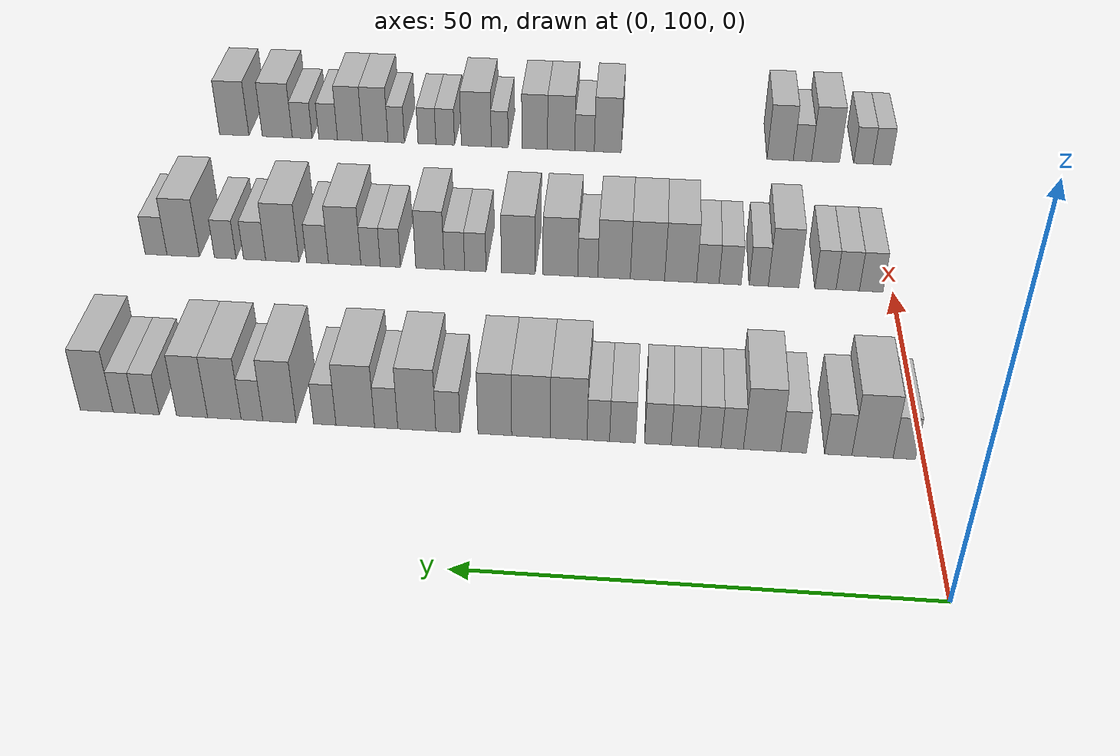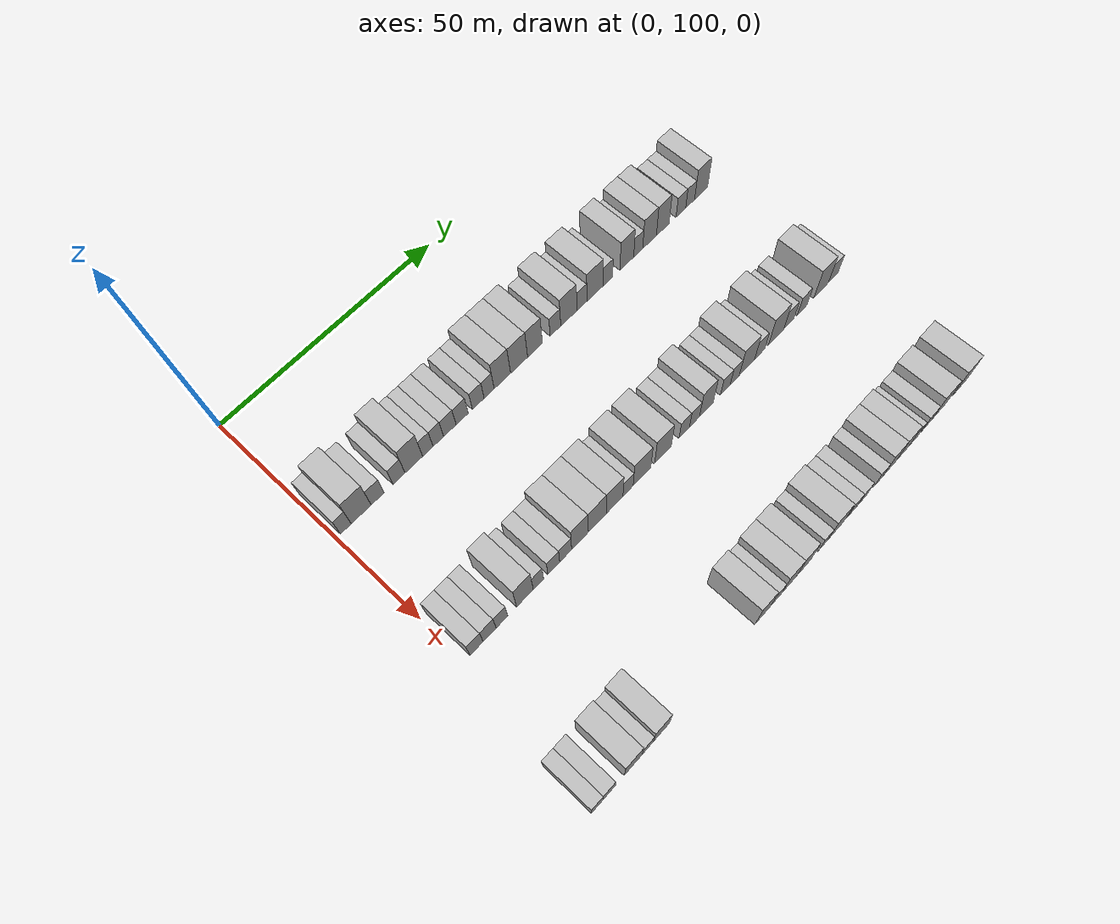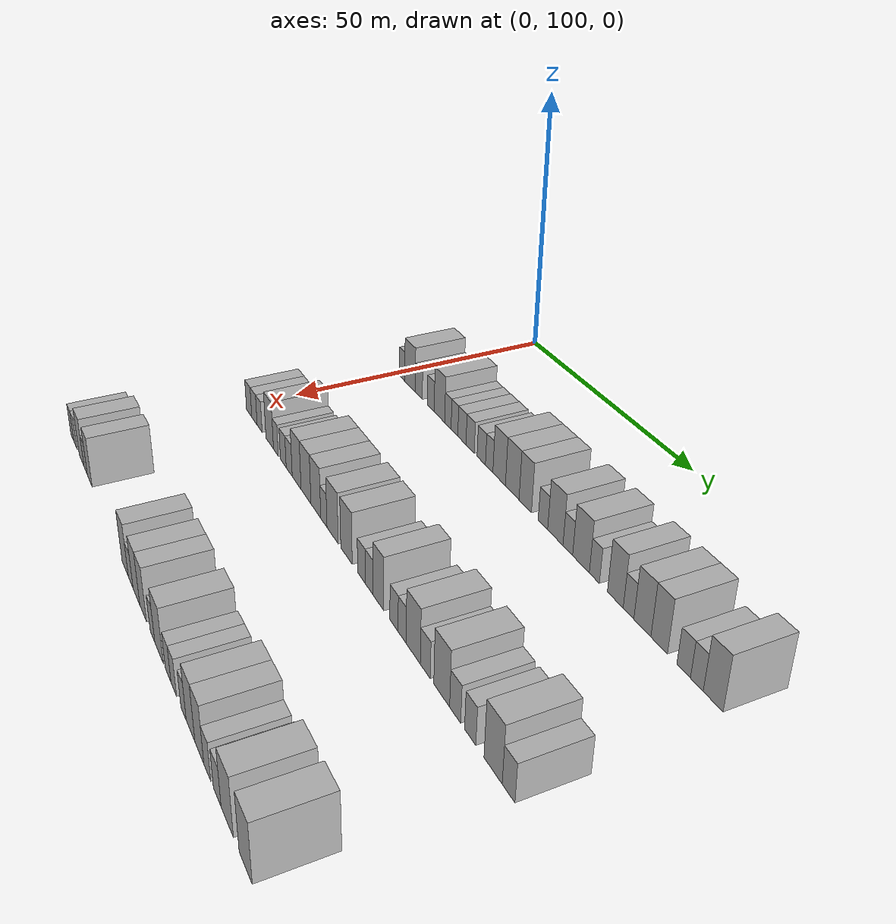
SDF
<sdf version="1.6">
 <world name="default">
  <model name="building_90">
   <static>1</static>
   <pose>25.0000 102.1770 0 0.000000 0.000000 0.000000</pose>
   <link name="link">
    <pose>0 0 3.00 0 0 0</pose>
    <collision name="collision"><geometry><box><size>10.0000 2.4174 6.0000</size></box></geometry></collision>
    <visual name="visual">
     <cast_shadows>0</cast_shadows>
     <geometry><box><size>10.0000 2.4174 6.0000</size></box></geometry>
     <material>
      <script>
       <uri>model://HANNAS_wall/materials/scripts</uri>
       <uri>model://HANNAS_wall/materials/textures</uri>
       <name>vrc/HANNAS_wall</name>
      </script>
     </material>
    </visual>
   </link>
  </model>
  <model name="building_91">
   <static>1</static>
   <pose>25.0000 105.6229 0 0.000000 0.000000 0.000000</pose>
   <link name="link">
    <pose>0 0 4.50 0 0 0</pose>
    <collision name="collision"><geometry><box><size>10.0000 4.4744 9.0000</size></box></geometry></collision>
    <visual name="visual">
     <cast_shadows>0</cast_shadows>
     <geometry><box><size>10.0000 4.4744 9.0000</size></box></geometry>
     <material>
      <script>
       <uri>model://HANNAS_wall/materials/scripts</uri>
       <uri>model://HANNAS_wall/materials/textures</uri>
       <name>vrc/HANNAS_wall</name>
      </script>
     </material>
    </visual>
   </link>
  </model>
  <model name="building_92">
   <static>1</static>
   <pose>25.0000 109.3380 0 0.000000 0.000000 0.000000</pose>
   <link name="link">
    <pose>0 0 3.00 0 0 0</pose>
    <collision name="collision"><geometry><box><size>10.0000 2.9559 6.0000</size></box></geometry></collision>
    <visual name="visual">
     <cast_shadows>0</cast_shadows>
     <geometry><box><size>10.0000 2.9559 6.0000</size></box></geometry>
     <material>
      <script>
       <uri>model://HANNAS_wall/materials/scripts</uri>
       <uri>model://HANNAS_wall/materials/textures</uri>
       <name>vrc/HANNAS_wall</name>
      </script>
     </material>
    </visual>
   </link>
  </model>
  <model name="building_93">
   <static>1</static>
   <pose>25.0000 114.2175 0 0.000000 0.000000 0.000000</pose>
   <link name="link">
    <pose>0 0 3.00 0 0 0</pose>
    <collision name="collision"><geometry><box><size>10.0000 2.8030 6.0000</size></box></geometry></collision>
    <visual name="visual">
     <cast_shadows>0</cast_shadows>
     <geometry><box><size>10.0000 2.8030 6.0000</size></box></geometry>
     <material>
      <script>
       <uri>model://HANNAS_wall/materials/scripts</uri>
       <uri>model://HANNAS_wall/materials/textures</uri>
       <name>vrc/HANNAS_wall</name>
      </script>
     </material>
    </visual>
   </link>
  </model>
  <model name="building_94">
   <static>1</static>
   <pose>25.0000 117.6730 0 0.000000 0.000000 0.000000</pose>
   <link name="link">
    <pose>0 0 4.50 0 0 0</pose>
    <collision name="collision"><geometry><box><size>10.0000 4.1080 9.0000</size></box></geometry></collision>
    <visual name="visual">
     <cast_shadows>0</cast_shadows>
     <geometry><box><size>10.0000 4.1080 9.0000</size></box></geometry>
     <material>
      <script>
       <uri>model://HANNAS_wall/materials/scripts</uri>
       <uri>model://HANNAS_wall/materials/textures</uri>
       <name>vrc/HANNAS_wall</name>
      </script>
     </material>
    </visual>
   </link>
  </model>
  <model name="building_95">
   <static>1</static>
   <pose>25.0000 120.9641 0 0.000000 0.000000 0.000000</pose>
   <link name="link">
    <pose>0 0 3.00 0 0 0</pose>
    <collision name="collision"><geometry><box><size>10.0000 2.4741 6.0000</size></box></geometry></collision>
    <visual name="visual">
     <cast_shadows>0</cast_shadows>
     <geometry><box><size>10.0000 2.4741 6.0000</size></box></geometry>
     <material>
      <script>
       <uri>model://HANNAS_wall/materials/scripts</uri>
       <uri>model://HANNAS_wall/materials/textures</uri>
       <name>vrc/HANNAS_wall</name>
      </script>
     </material>
    </visual>
   </link>
  </model>
  <model name="building_96">
   <static>1</static>
   <pose>25.0000 123.4543 0 0.000000 0.000000 0.000000</pose>
   <link name="link">
    <pose>0 0 3.00 0 0 0</pose>
    <collision name="collision"><geometry><box><size>10.0000 2.5065 6.0000</size></box></geometry></collision>
    <visual name="visual">
     <cast_shadows>0</cast_shadows>
     <geometry><box><size>10.0000 2.5065 6.0000</size></box></geometry>
     <material>
      <script>
       <uri>model://HANNAS_wall/materials/scripts</uri>
       <uri>model://HANNAS_wall/materials/textures</uri>
       <name>vrc/HANNAS_wall</name>
      </script>
     </material>
    </visual>
   </link>
  </model>
  <model name="building_97">
   <static>1</static>
   <pose>25.0000 126.2074 0 0.000000 0.000000 0.000000</pose>
   <link name="link">
    <pose>0 0 3.00 0 0 0</pose>
    <collision name="collision"><geometry><box><size>10.0000 2.9996 6.0000</size></box></geometry></collision>
    <visual name="visual">
     <cast_shadows>0</cast_shadows>
     <geometry><box><size>10.0000 2.9996 6.0000</size></box></geometry>
     <material>
      <script>
       <uri>model://HANNAS_wall/materials/scripts</uri>
       <uri>model://HANNAS_wall/materials/textures</uri>
       <name>vrc/HANNAS_wall</name>
      </script>
     </material>
    </visual>
   </link>
  </model>
  <model name="building_98">
   <static>1</static>
   <pose>25.0000 129.1795 0 0.000000 0.000000 0.000000</pose>
   <link name="link">
    <pose>0 0 3.00 0 0 0</pose>
    <collision name="collision"><geometry><box><size>10.0000 2.9447 6.0000</size></box></geometry></collision>
    <visual name="visual">
     <cast_shadows>0</cast_shadows>
     <geometry><box><size>10.0000 2.9447 6.0000</size></box></geometry>
     <material>
      <script>
       <uri>model://HANNAS_wall/materials/scripts</uri>
       <uri>model://HANNAS_wall/materials/textures</uri>
       <name>vrc/HANNAS_wall</name>
      </script>
     </material>
    </visual>
   </link>
  </model>
  <model name="building_99">
   <static>1</static>
   <pose>25.0000 133.0949 0 0.000000 0.000000 0.000000</pose>
   <link name="link">
    <pose>0 0 3.00 0 0 0</pose>
    <collision name="collision"><geometry><box><size>10.0000 2.8861 6.0000</size></box></geometry></collision>
    <visual name="visual">
     <cast_shadows>0</cast_shadows>
     <geometry><box><size>10.0000 2.8861 6.0000</size></box></geometry>
     <material>
      <script>
       <uri>model://HANNAS_wall/materials/scripts</uri>
       <uri>model://HANNAS_wall/materials/textures</uri>
       <name>vrc/HANNAS_wall</name>
      </script>
     </material>
    </visual>
   </link>
  </model>
  <model name="building_100">
   <static>1</static>
   <pose>25.0000 135.7942 0 0.000000 0.000000 0.000000</pose>
   <link name="link">
    <pose>0 0 3.00 0 0 0</pose>
    <collision name="collision"><geometry><box><size>10.0000 2.5126 6.0000</size></box></geometry></collision>
    <visual name="visual">
     <cast_shadows>0</cast_shadows>
     <geometry><box><size>10.0000 2.5126 6.0000</size></box></geometry>
     <material>
      <script>
       <uri>model://HANNAS_wall/materials/scripts</uri>
       <uri>model://HANNAS_wall/materials/textures</uri>
       <name>vrc/HANNAS_wall</name>
      </script>
     </material>
    </visual>
   </link>
  </model>
  <model name="building_101">
   <static>1</static>
   <pose>25.0000 139.1042 0 0.000000 0.000000 0.000000</pose>
   <link name="link">
    <pose>0 0 4.50 0 0 0</pose>
    <collision name="collision"><geometry><box><size>10.0000 4.1073 9.0000</size></box></geometry></collision>
    <visual name="visual">
     <cast_shadows>0</cast_shadows>
     <geometry><box><size>10.0000 4.1073 9.0000</size></box></geometry>
     <material>
      <script>
       <uri>model://HANNAS_wall/materials/scripts</uri>
       <uri>model://HANNAS_wall/materials/textures</uri>
       <name>vrc/HANNAS_wall</name>
      </script>
     </material>
    </visual>
   </link>
  </model>
  <model name="building_102">
   <static>1</static>
   <pose>25.0000 143.3196 0 0.000000 0.000000 0.000000</pose>
   <link name="link">
    <pose>0 0 4.50 0 0 0</pose>
    <collision name="collision"><geometry><box><size>10.0000 4.3234 9.0000</size></box></geometry></collision>
    <visual name="visual">
     <cast_shadows>0</cast_shadows>
     <geometry><box><size>10.0000 4.3234 9.0000</size></box></geometry>
     <material>
      <script>
       <uri>model://HANNAS_wall/materials/scripts</uri>
       <uri>model://HANNAS_wall/materials/textures</uri>
       <name>vrc/HANNAS_wall</name>
      </script>
     </material>
    </visual>
   </link>
  </model>
  <model name="building_103">
   <static>1</static>
   <pose>25.0000 147.3773 0 0.000000 0.000000 0.000000</pose>
   <link name="link">
    <pose>0 0 4.50 0 0 0</pose>
    <collision name="collision"><geometry><box><size>10.0000 3.7920 9.0000</size></box></geometry></collision>
    <visual name="visual">
     <cast_shadows>0</cast_shadows>
     <geometry><box><size>10.0000 3.7920 9.0000</size></box></geometry>
     <material>
      <script>
       <uri>model://HANNAS_wall/materials/scripts</uri>
       <uri>model://HANNAS_wall/materials/textures</uri>
       <name>vrc/HANNAS_wall</name>
      </script>
     </material>
    </visual>
   </link>
  </model>
  <model name="building_104">
   <static>1</static>
   <pose>25.0000 152.6532 0 0.000000 0.000000 0.000000</pose>
   <link name="link">
    <pose>0 0 3.00 0 0 0</pose>
    <collision name="collision"><geometry><box><size>10.0000 2.7597 6.0000</size></box></geometry></collision>
    <visual name="visual">
     <cast_shadows>0</cast_shadows>
     <geometry><box><size>10.0000 2.7597 6.0000</size></box></geometry>
     <material>
      <script>
       <uri>model://HANNAS_wall/materials/scripts</uri>
       <uri>model://HANNAS_wall/materials/textures</uri>
       <name>vrc/HANNAS_wall</name>
      </script>
     </material>
    </visual>
   </link>
  </model>
  <model name="building_105">
   <static>1</static>
   <pose>25.0000 156.1890 0 0.000000 0.000000 0.000000</pose>
   <link name="link">
    <pose>0 0 4.50 0 0 0</pose>
    <collision name="collision"><geometry><box><size>10.0000 4.3119 9.0000</size></box></geometry></collision>
    <visual name="visual">
     <cast_shadows>0</cast_shadows>
     <geometry><box><size>10.0000 4.3119 9.0000</size></box></geometry>
     <material>
      <script>
       <uri>model://HANNAS_wall/materials/scripts</uri>
       <uri>model://HANNAS_wall/materials/textures</uri>
       <name>vrc/HANNAS_wall</name>
      </script>
     </material>
    </visual>
   </link>
  </model>
  <model name="building_106">
   <static>1</static>
   <pose>25.0000 159.6617 0 0.000000 0.000000 0.000000</pose>
   <link name="link">
    <pose>0 0 3.00 0 0 0</pose>
    <collision name="collision"><geometry><box><size>10.0000 2.6334 6.0000</size></box></geometry></collision>
    <visual name="visual">
     <cast_shadows>0</cast_shadows>
     <geometry><box><size>10.0000 2.6334 6.0000</size></box></geometry>
     <material>
      <script>
       <uri>model://HANNAS_wall/materials/scripts</uri>
       <uri>model://HANNAS_wall/materials/textures</uri>
       <name>vrc/HANNAS_wall</name>
      </script>
     </material>
    </visual>
   </link>
  </model>
  <model name="building_107">
   <static>1</static>
   <pose>25.0000 163.1807 0 0.000000 0.000000 0.000000</pose>
   <link name="link">
    <pose>0 0 4.50 0 0 0</pose>
    <collision name="collision"><geometry><box><size>10.0000 4.4045 9.0000</size></box></geometry></collision>
    <visual name="visual">
     <cast_shadows>0</cast_shadows>
     <geometry><box><size>10.0000 4.4045 9.0000</size></box></geometry>
     <material>
      <script>
       <uri>model://HANNAS_wall/materials/scripts</uri>
       <uri>model://HANNAS_wall/materials/textures</uri>
       <name>vrc/HANNAS_wall</name>
      </script>
     </material>
    </visual>
   </link>
  </model>
  <model name="building_108">
   <static>1</static>
   <pose>25.0000 166.6665 0 0.000000 0.000000 0.000000</pose>
   <link name="link">
    <pose>0 0 3.00 0 0 0</pose>
    <collision name="collision"><geometry><box><size>10.0000 2.5673 6.0000</size></box></geometry></collision>
    <visual name="visual">
     <cast_shadows>0</cast_shadows>
     <geometry><box><size>10.0000 2.5673 6.0000</size></box></geometry>
     <material>
      <script>
       <uri>model://HANNAS_wall/materials/scripts</uri>
       <uri>model://HANNAS_wall/materials/textures</uri>
       <name>vrc/HANNAS_wall</name>
      </script>
     </material>
    </visual>
   </link>
  </model>
  <model name="building_109">
   <static>1</static>
   <pose>25.0000 171.8564 0 0.000000 0.000000 0.000000</pose>
   <link name="link">
    <pose>0 0 4.50 0 0 0</pose>
    <collision name="collision"><geometry><box><size>10.0000 3.8125 9.0000</size></box></geometry></collision>
    <visual name="visual">
     <cast_shadows>0</cast_shadows>
     <geometry><box><size>10.0000 3.8125 9.0000</size></box></geometry>
     <material>
      <script>
       <uri>model://HANNAS_wall/materials/scripts</uri>
       <uri>model://HANNAS_wall/materials/textures</uri>
       <name>vrc/HANNAS_wall</name>
      </script>
     </material>
    </visual>
   </link>
  </model>
  <model name="building_110">
   <static>1</static>
   <pose>25.0000 175.0167 0 0.000000 0.000000 0.000000</pose>
   <link name="link">
    <pose>0 0 3.00 0 0 0</pose>
    <collision name="collision"><geometry><box><size>10.0000 2.5080 6.0000</size></box></geometry></collision>
    <visual name="visual">
     <cast_shadows>0</cast_shadows>
     <geometry><box><size>10.0000 2.5080 6.0000</size></box></geometry>
     <material>
      <script>
       <uri>model://HANNAS_wall/materials/scripts</uri>
       <uri>model://HANNAS_wall/materials/textures</uri>
       <name>vrc/HANNAS_wall</name>
      </script>
     </material>
    </visual>
   </link>
  </model>
  <model name="building_111">
   <static>1</static>
   <pose>25.0000 178.2026 0 0.000000 0.000000 0.000000</pose>
   <link name="link">
    <pose>0 0 4.50 0 0 0</pose>
    <collision name="collision"><geometry><box><size>10.0000 3.8639 9.0000</size></box></geometry></collision>
    <visual name="visual">
     <cast_shadows>0</cast_shadows>
     <geometry><box><size>10.0000 3.8639 9.0000</size></box></geometry>
     <material>
      <script>
       <uri>model://HANNAS_wall/materials/scripts</uri>
       <uri>model://HANNAS_wall/materials/textures</uri>
       <name>vrc/HANNAS_wall</name>
      </script>
     </material>
    </visual>
   </link>
  </model>
  <model name="building_112">
   <static>1</static>
   <pose>25.0000 181.9411 0 0.000000 0.000000 0.000000</pose>
   <link name="link">
    <pose>0 0 4.50 0 0 0</pose>
    <collision name="collision"><geometry><box><size>10.0000 3.6131 9.0000</size></box></geometry></collision>
    <visual name="visual">
     <cast_shadows>0</cast_shadows>
     <geometry><box><size>10.0000 3.6131 9.0000</size></box></geometry>
     <material>
      <script>
       <uri>model://HANNAS_wall/materials/scripts</uri>
       <uri>model://HANNAS_wall/materials/textures</uri>
       <name>vrc/HANNAS_wall</name>
      </script>
     </material>
    </visual>
   </link>
  </model>
  <model name="building_113">
   <static>1</static>
   <pose>25.0000 187.1473 0 0.000000 0.000000 0.000000</pose>
   <link name="link">
    <pose>0 0 3.00 0 0 0</pose>
    <collision name="collision"><geometry><box><size>10.0000 2.7991 6.0000</size></box></geometry></collision>
    <visual name="visual">
     <cast_shadows>0</cast_shadows>
     <geometry><box><size>10.0000 2.7991 6.0000</size></box></geometry>
     <material>
      <script>
       <uri>model://HANNAS_wall/materials/scripts</uri>
       <uri>model://HANNAS_wall/materials/textures</uri>
       <name>vrc/HANNAS_wall</name>
      </script>
     </material>
    </visual>
   </link>
  </model>
  <model name="building_114">
   <static>1</static>
   <pose>25.0000 189.8278 0 0.000000 0.000000 0.000000</pose>
   <link name="link">
    <pose>0 0 3.00 0 0 0</pose>
    <collision name="collision"><geometry><box><size>10.0000 2.5619 6.0000</size></box></geometry></collision>
    <visual name="visual">
     <cast_shadows>0</cast_shadows>
     <geometry><box><size>10.0000 2.5619 6.0000</size></box></geometry>
     <material>
      <script>
       <uri>model://HANNAS_wall/materials/scripts</uri>
       <uri>model://HANNAS_wall/materials/textures</uri>
       <name>vrc/HANNAS_wall</name>
      </script>
     </material>
    </visual>
   </link>
  </model>
  <model name="building_115">
   <static>1</static>
   <pose>25.0000 193.0328 0 0.000000 0.000000 0.000000</pose>
   <link name="link">
    <pose>0 0 4.50 0 0 0</pose>
    <collision name="collision"><geometry><box><size>10.0000 3.8481 9.0000</size></box></geometry></collision>
    <visual name="visual">
     <cast_shadows>0</cast_shadows>
     <geometry><box><size>10.0000 3.8481 9.0000</size></box></geometry>
     <material>
      <script>
       <uri>model://HANNAS_wall/materials/scripts</uri>
       <uri>model://HANNAS_wall/materials/textures</uri>
       <name>vrc/HANNAS_wall</name>
      </script>
     </material>
    </visual>
   </link>
  </model>
  <model name="building_235">
   <static>1</static>
   <pose>55.0000 102.7722 0 0.000000 0.000000 0.000000</pose>
   <link name="link">
    <pose>0 0 3.00 0 0 0</pose>
    <collision name="collision"><geometry><box><size>10.0000 2.9476 6.0000</size></box></geometry></collision>
    <visual name="visual">
     <cast_shadows>0</cast_shadows>
     <geometry><box><size>10.0000 2.9476 6.0000</size></box></geometry>
     <material>
      <script>
       <uri>model://HANNAS_wall/materials/scripts</uri>
       <uri>model://HANNAS_wall/materials/textures</uri>
       <name>vrc/HANNAS_wall</name>
      </script>
     </material>
    </visual>
   </link>
  </model>
  <model name="building_236">
   <static>1</static>
   <pose>55.0000 105.7058 0 0.000000 0.000000 0.000000</pose>
   <link name="link">
    <pose>0 0 3.00 0 0 0</pose>
    <collision name="collision"><geometry><box><size>10.0000 2.9196 6.0000</size></box></geometry></collision>
    <visual name="visual">
     <cast_shadows>0</cast_shadows>
     <geometry><box><size>10.0000 2.9196 6.0000</size></box></geometry>
     <material>
      <script>
       <uri>model://HANNAS_wall/materials/scripts</uri>
       <uri>model://HANNAS_wall/materials/textures</uri>
       <name>vrc/HANNAS_wall</name>
      </script>
     </material>
    </visual>
   </link>
  </model>
  <model name="building_237">
   <static>1</static>
   <pose>55.0000 108.4923 0 0.000000 0.000000 0.000000</pose>
   <link name="link">
    <pose>0 0 3.00 0 0 0</pose>
    <collision name="collision"><geometry><box><size>10.0000 2.6533 6.0000</size></box></geometry></collision>
    <visual name="visual">
     <cast_shadows>0</cast_shadows>
     <geometry><box><size>10.0000 2.6533 6.0000</size></box></geometry>
     <material>
      <script>
       <uri>model://HANNAS_wall/materials/scripts</uri>
       <uri>model://HANNAS_wall/materials/textures</uri>
       <name>vrc/HANNAS_wall</name>
      </script>
     </material>
    </visual>
   </link>
  </model>
  <model name="building_238">
   <static>1</static>
   <pose>55.0000 113.7496 0 0.000000 0.000000 0.000000</pose>
   <link name="link">
    <pose>0 0 4.50 0 0 0</pose>
    <collision name="collision"><geometry><box><size>10.0000 3.8613 9.0000</size></box></geometry></collision>
    <visual name="visual">
     <cast_shadows>0</cast_shadows>
     <geometry><box><size>10.0000 3.8613 9.0000</size></box></geometry>
     <material>
      <script>
       <uri>model://HANNAS_wall/materials/scripts</uri>
       <uri>model://HANNAS_wall/materials/textures</uri>
       <name>vrc/HANNAS_wall</name>
      </script>
     </material>
    </visual>
   </link>
  </model>
  <model name="building_239">
   <static>1</static>
   <pose>55.0000 116.8926 0 0.000000 0.000000 0.000000</pose>
   <link name="link">
    <pose>0 0 3.00 0 0 0</pose>
    <collision name="collision"><geometry><box><size>10.0000 2.4247 6.0000</size></box></geometry></collision>
    <visual name="visual">
     <cast_shadows>0</cast_shadows>
     <geometry><box><size>10.0000 2.4247 6.0000</size></box></geometry>
     <material>
      <script>
       <uri>model://HANNAS_wall/materials/scripts</uri>
       <uri>model://HANNAS_wall/materials/textures</uri>
       <name>vrc/HANNAS_wall</name>
      </script>
     </material>
    </visual>
   </link>
  </model>
  <model name="building_240">
   <static>1</static>
   <pose>55.0000 120.5043 0 0.000000 0.000000 0.000000</pose>
   <link name="link">
    <pose>0 0 3.00 0 0 0</pose>
    <collision name="collision"><geometry><box><size>10.0000 2.7988 6.0000</size></box></geometry></collision>
    <visual name="visual">
     <cast_shadows>0</cast_shadows>
     <geometry><box><size>10.0000 2.7988 6.0000</size></box></geometry>
     <material>
      <script>
       <uri>model://HANNAS_wall/materials/scripts</uri>
       <uri>model://HANNAS_wall/materials/textures</uri>
       <name>vrc/HANNAS_wall</name>
      </script>
     </material>
    </visual>
   </link>
  </model>
  <model name="building_241">
   <static>1</static>
   <pose>55.0000 123.3331 0 0.000000 0.000000 0.000000</pose>
   <link name="link">
    <pose>0 0 3.00 0 0 0</pose>
    <collision name="collision"><geometry><box><size>10.0000 2.8587 6.0000</size></box></geometry></collision>
    <visual name="visual">
     <cast_shadows>0</cast_shadows>
     <geometry><box><size>10.0000 2.8587 6.0000</size></box></geometry>
     <material>
      <script>
       <uri>model://HANNAS_wall/materials/scripts</uri>
       <uri>model://HANNAS_wall/materials/textures</uri>
       <name>vrc/HANNAS_wall</name>
      </script>
     </material>
    </visual>
   </link>
  </model>
  <model name="building_242">
   <static>1</static>
   <pose>55.0000 126.7870 0 0.000000 0.000000 0.000000</pose>
   <link name="link">
    <pose>0 0 4.50 0 0 0</pose>
    <collision name="collision"><geometry><box><size>10.0000 4.0492 9.0000</size></box></geometry></collision>
    <visual name="visual">
     <cast_shadows>0</cast_shadows>
     <geometry><box><size>10.0000 4.0492 9.0000</size></box></geometry>
     <material>
      <script>
       <uri>model://HANNAS_wall/materials/scripts</uri>
       <uri>model://HANNAS_wall/materials/textures</uri>
       <name>vrc/HANNAS_wall</name>
      </script>
     </material>
    </visual>
   </link>
  </model>
  <model name="building_243">
   <static>1</static>
   <pose>55.0000 130.9970 0 0.000000 0.000000 0.000000</pose>
   <link name="link">
    <pose>0 0 4.50 0 0 0</pose>
    <collision name="collision"><geometry><box><size>10.0000 4.3709 9.0000</size></box></geometry></collision>
    <visual name="visual">
     <cast_shadows>0</cast_shadows>
     <geometry><box><size>10.0000 4.3709 9.0000</size></box></geometry>
     <material>
      <script>
       <uri>model://HANNAS_wall/materials/scripts</uri>
       <uri>model://HANNAS_wall/materials/textures</uri>
       <name>vrc/HANNAS_wall</name>
      </script>
     </material>
    </visual>
   </link>
  </model>
  <model name="building_244">
   <static>1</static>
   <pose>55.0000 135.2587 0 0.000000 0.000000 0.000000</pose>
   <link name="link">
    <pose>0 0 4.50 0 0 0</pose>
    <collision name="collision"><geometry><box><size>10.0000 4.1524 9.0000</size></box></geometry></collision>
    <visual name="visual">
     <cast_shadows>0</cast_shadows>
     <geometry><box><size>10.0000 4.1524 9.0000</size></box></geometry>
     <material>
      <script>
       <uri>model://HANNAS_wall/materials/scripts</uri>
       <uri>model://HANNAS_wall/materials/textures</uri>
       <name>vrc/HANNAS_wall</name>
      </script>
     </material>
    </visual>
   </link>
  </model>
  <model name="building_245">
   <static>1</static>
   <pose>55.0000 138.6192 0 0.000000 0.000000 0.000000</pose>
   <link name="link">
    <pose>0 0 3.00 0 0 0</pose>
    <collision name="collision"><geometry><box><size>10.0000 2.5686 6.0000</size></box></geometry></collision>
    <visual name="visual">
     <cast_shadows>0</cast_shadows>
     <geometry><box><size>10.0000 2.5686 6.0000</size></box></geometry>
     <material>
      <script>
       <uri>model://HANNAS_wall/materials/scripts</uri>
       <uri>model://HANNAS_wall/materials/textures</uri>
       <name>vrc/HANNAS_wall</name>
      </script>
     </material>
    </visual>
   </link>
  </model>
  <model name="building_246">
   <static>1</static>
   <pose>55.0000 142.1451 0 0.000000 0.000000 0.000000</pose>
   <link name="link">
    <pose>0 0 4.50 0 0 0</pose>
    <collision name="collision"><geometry><box><size>10.0000 4.4832 9.0000</size></box></geometry></collision>
    <visual name="visual">
     <cast_shadows>0</cast_shadows>
     <geometry><box><size>10.0000 4.4832 9.0000</size></box></geometry>
     <material>
      <script>
       <uri>model://HANNAS_wall/materials/scripts</uri>
       <uri>model://HANNAS_wall/materials/textures</uri>
       <name>vrc/HANNAS_wall</name>
      </script>
     </material>
    </visual>
   </link>
  </model>
  <model name="building_247">
   <static>1</static>
   <pose>55.0000 147.5542 0 0.000000 0.000000 0.000000</pose>
   <link name="link">
    <pose>0 0 4.50 0 0 0</pose>
    <collision name="collision"><geometry><box><size>10.0000 4.3351 9.0000</size></box></geometry></collision>
    <visual name="visual">
     <cast_shadows>0</cast_shadows>
     <geometry><box><size>10.0000 4.3351 9.0000</size></box></geometry>
     <material>
      <script>
       <uri>model://HANNAS_wall/materials/scripts</uri>
       <uri>model://HANNAS_wall/materials/textures</uri>
       <name>vrc/HANNAS_wall</name>
      </script>
     </material>
    </visual>
   </link>
  </model>
  <model name="building_248">
   <static>1</static>
   <pose>55.0000 153.1031 0 0.000000 0.000000 0.000000</pose>
   <link name="link">
    <pose>0 0 3.00 0 0 0</pose>
    <collision name="collision"><geometry><box><size>10.0000 2.7626 6.0000</size></box></geometry></collision>
    <visual name="visual">
     <cast_shadows>0</cast_shadows>
     <geometry><box><size>10.0000 2.7626 6.0000</size></box></geometry>
     <material>
      <script>
       <uri>model://HANNAS_wall/materials/scripts</uri>
       <uri>model://HANNAS_wall/materials/textures</uri>
       <name>vrc/HANNAS_wall</name>
      </script>
     </material>
    </visual>
   </link>
  </model>
  <model name="building_249">
   <static>1</static>
   <pose>55.0000 155.8089 0 0.000000 0.000000 0.000000</pose>
   <link name="link">
    <pose>0 0 3.00 0 0 0</pose>
    <collision name="collision"><geometry><box><size>10.0000 2.6492 6.0000</size></box></geometry></collision>
    <visual name="visual">
     <cast_shadows>0</cast_shadows>
     <geometry><box><size>10.0000 2.6492 6.0000</size></box></geometry>
     <material>
      <script>
       <uri>model://HANNAS_wall/materials/scripts</uri>
       <uri>model://HANNAS_wall/materials/textures</uri>
       <name>vrc/HANNAS_wall</name>
      </script>
     </material>
    </visual>
   </link>
  </model>
  <model name="building_250">
   <static>1</static>
   <pose>55.0000 158.9843 0 0.000000 0.000000 0.000000</pose>
   <link name="link">
    <pose>0 0 4.50 0 0 0</pose>
    <collision name="collision"><geometry><box><size>10.0000 3.7017 9.0000</size></box></geometry></collision>
    <visual name="visual">
     <cast_shadows>0</cast_shadows>
     <geometry><box><size>10.0000 3.7017 9.0000</size></box></geometry>
     <material>
      <script>
       <uri>model://HANNAS_wall/materials/scripts</uri>
       <uri>model://HANNAS_wall/materials/textures</uri>
       <name>vrc/HANNAS_wall</name>
      </script>
     </material>
    </visual>
   </link>
  </model>
  <model name="building_251">
   <static>1</static>
   <pose>55.0000 164.1551 0 0.000000 0.000000 0.000000</pose>
   <link name="link">
    <pose>0 0 3.00 0 0 0</pose>
    <collision name="collision"><geometry><box><size>10.0000 2.6398 6.0000</size></box></geometry></collision>
    <visual name="visual">
     <cast_shadows>0</cast_shadows>
     <geometry><box><size>10.0000 2.6398 6.0000</size></box></geometry>
     <material>
      <script>
       <uri>model://HANNAS_wall/materials/scripts</uri>
       <uri>model://HANNAS_wall/materials/textures</uri>
       <name>vrc/HANNAS_wall</name>
      </script>
     </material>
    </visual>
   </link>
  </model>
  <model name="building_252">
   <static>1</static>
   <pose>55.0000 166.7379 0 0.000000 0.000000 0.000000</pose>
   <link name="link">
    <pose>0 0 3.00 0 0 0</pose>
    <collision name="collision"><geometry><box><size>10.0000 2.5258 6.0000</size></box></geometry></collision>
    <visual name="visual">
     <cast_shadows>0</cast_shadows>
     <geometry><box><size>10.0000 2.5258 6.0000</size></box></geometry>
     <material>
      <script>
       <uri>model://HANNAS_wall/materials/scripts</uri>
       <uri>model://HANNAS_wall/materials/textures</uri>
       <name>vrc/HANNAS_wall</name>
      </script>
     </material>
    </visual>
   </link>
  </model>
  <model name="building_253">
   <static>1</static>
   <pose>55.0000 170.1296 0 0.000000 0.000000 0.000000</pose>
   <link name="link">
    <pose>0 0 4.50 0 0 0</pose>
    <collision name="collision"><geometry><box><size>10.0000 4.2576 9.0000</size></box></geometry></collision>
    <visual name="visual">
     <cast_shadows>0</cast_shadows>
     <geometry><box><size>10.0000 4.2576 9.0000</size></box></geometry>
     <material>
      <script>
       <uri>model://HANNAS_wall/materials/scripts</uri>
       <uri>model://HANNAS_wall/materials/textures</uri>
       <name>vrc/HANNAS_wall</name>
      </script>
     </material>
    </visual>
   </link>
  </model>
  <model name="building_254">
   <static>1</static>
   <pose>55.0000 173.7026 0 0.000000 0.000000 0.000000</pose>
   <link name="link">
    <pose>0 0 3.00 0 0 0</pose>
    <collision name="collision"><geometry><box><size>10.0000 2.8885 6.0000</size></box></geometry></collision>
    <visual name="visual">
     <cast_shadows>0</cast_shadows>
     <geometry><box><size>10.0000 2.8885 6.0000</size></box></geometry>
     <material>
      <script>
       <uri>model://HANNAS_wall/materials/scripts</uri>
       <uri>model://HANNAS_wall/materials/textures</uri>
       <name>vrc/HANNAS_wall</name>
      </script>
     </material>
    </visual>
   </link>
  </model>
  <model name="building_255">
   <static>1</static>
   <pose>55.0000 178.3398 0 0.000000 0.000000 0.000000</pose>
   <link name="link">
    <pose>0 0 4.50 0 0 0</pose>
    <collision name="collision"><geometry><box><size>10.0000 4.3857 9.0000</size></box></geometry></collision>
    <visual name="visual">
     <cast_shadows>0</cast_shadows>
     <geometry><box><size>10.0000 4.3857 9.0000</size></box></geometry>
     <material>
      <script>
       <uri>model://HANNAS_wall/materials/scripts</uri>
       <uri>model://HANNAS_wall/materials/textures</uri>
       <name>vrc/HANNAS_wall</name>
      </script>
     </material>
    </visual>
   </link>
  </model>
  <model name="building_256">
   <static>1</static>
   <pose>55.0000 181.9958 0 0.000000 0.000000 0.000000</pose>
   <link name="link">
    <pose>0 0 3.00 0 0 0</pose>
    <collision name="collision"><geometry><box><size>10.0000 2.9264 6.0000</size></box></geometry></collision>
    <visual name="visual">
     <cast_shadows>0</cast_shadows>
     <geometry><box><size>10.0000 2.9264 6.0000</size></box></geometry>
     <material>
      <script>
       <uri>model://HANNAS_wall/materials/scripts</uri>
       <uri>model://HANNAS_wall/materials/textures</uri>
       <name>vrc/HANNAS_wall</name>
      </script>
     </material>
    </visual>
   </link>
  </model>
  <model name="building_257">
   <static>1</static>
   <pose>55.0000 185.8886 0 0.000000 0.000000 0.000000</pose>
   <link name="link">
    <pose>0 0 3.00 0 0 0</pose>
    <collision name="collision"><geometry><box><size>10.0000 2.8592 6.0000</size></box></geometry></collision>
    <visual name="visual">
     <cast_shadows>0</cast_shadows>
     <geometry><box><size>10.0000 2.8592 6.0000</size></box></geometry>
     <material>
      <script>
       <uri>model://HANNAS_wall/materials/scripts</uri>
       <uri>model://HANNAS_wall/materials/textures</uri>
       <name>vrc/HANNAS_wall</name>
      </script>
     </material>
    </visual>
   </link>
  </model>
  <model name="building_258">
   <static>1</static>
   <pose>55.0000 191.4764 0 0.000000 0.000000 0.000000</pose>
   <link name="link">
    <pose>0 0 4.50 0 0 0</pose>
    <collision name="collision"><geometry><box><size>10.0000 4.3163 9.0000</size></box></geometry></collision>
    <visual name="visual">
     <cast_shadows>0</cast_shadows>
     <geometry><box><size>10.0000 4.3163 9.0000</size></box></geometry>
     <material>
      <script>
       <uri>model://HANNAS_wall/materials/scripts</uri>
       <uri>model://HANNAS_wall/materials/textures</uri>
       <name>vrc/HANNAS_wall</name>
      </script>
     </material>
    </visual>
   </link>
  </model>
  <model name="building_259">
   <static>1</static>
   <pose>55.0000 195.0906 0 0.000000 0.000000 0.000000</pose>
   <link name="link">
    <pose>0 0 3.00 0 0 0</pose>
    <collision name="collision"><geometry><box><size>10.0000 2.9120 6.0000</size></box></geometry></collision>
    <visual name="visual">
     <cast_shadows>0</cast_shadows>
     <geometry><box><size>10.0000 2.9120 6.0000</size></box></geometry>
     <material>
      <script>
       <uri>model://HANNAS_wall/materials/scripts</uri>
       <uri>model://HANNAS_wall/materials/textures</uri>
       <name>vrc/HANNAS_wall</name>
      </script>
     </material>
    </visual>
   </link>
  </model>
  <model name="building_384">
   <static>1</static>
   <pose>85.0000 98.2495 0 0.000000 0.000000 0.000000</pose>
   <link name="link">
    <pose>0 0 3.00 0 0 0</pose>
    <collision name="collision"><geometry><box><size>10.0000 2.5787 6.0000</size></box></geometry></collision>
    <visual name="visual">
     <cast_shadows>0</cast_shadows>
     <geometry><box><size>10.0000 2.5787 6.0000</size></box></geometry>
     <material>
      <script>
       <uri>model://HANNAS_wall/materials/scripts</uri>
       <uri>model://HANNAS_wall/materials/textures</uri>
       <name>vrc/HANNAS_wall</name>
      </script>
     </material>
    </visual>
   </link>
  </model>
  <model name="building_385">
   <static>1</static>
   <pose>85.0000 100.8945 0 0.000000 0.000000 0.000000</pose>
   <link name="link">
    <pose>0 0 3.00 0 0 0</pose>
    <collision name="collision"><geometry><box><size>10.0000 2.7114 6.0000</size></box></geometry></collision>
    <visual name="visual">
     <cast_shadows>0</cast_shadows>
     <geometry><box><size>10.0000 2.7114 6.0000</size></box></geometry>
     <material>
      <script>
       <uri>model://HANNAS_wall/materials/scripts</uri>
       <uri>model://HANNAS_wall/materials/textures</uri>
       <name>vrc/HANNAS_wall</name>
      </script>
     </material>
    </visual>
   </link>
  </model>
  <model name="building_386">
   <static>1</static>
   <pose>85.0000 106.2348 0 0.000000 0.000000 0.000000</pose>
   <link name="link">
    <pose>0 0 4.50 0 0 0</pose>
    <collision name="collision"><geometry><box><size>10.0000 3.9692 9.0000</size></box></geometry></collision>
    <visual name="visual">
     <cast_shadows>0</cast_shadows>
     <geometry><box><size>10.0000 3.9692 9.0000</size></box></geometry>
     <material>
      <script>
       <uri>model://HANNAS_wall/materials/scripts</uri>
       <uri>model://HANNAS_wall/materials/textures</uri>
       <name>vrc/HANNAS_wall</name>
      </script>
     </material>
    </visual>
   </link>
  </model>
  <model name="building_387">
   <static>1</static>
   <pose>85.0000 109.5137 0 0.000000 0.000000 0.000000</pose>
   <link name="link">
    <pose>0 0 3.00 0 0 0</pose>
    <collision name="collision"><geometry><box><size>10.0000 2.5885 6.0000</size></box></geometry></collision>
    <visual name="visual">
     <cast_shadows>0</cast_shadows>
     <geometry><box><size>10.0000 2.5885 6.0000</size></box></geometry>
     <material>
      <script>
       <uri>model://HANNAS_wall/materials/scripts</uri>
       <uri>model://HANNAS_wall/materials/textures</uri>
       <name>vrc/HANNAS_wall</name>
      </script>
     </material>
    </visual>
   </link>
  </model>
  <model name="building_388">
   <static>1</static>
   <pose>85.0000 112.6785 0 0.000000 0.000000 0.000000</pose>
   <link name="link">
    <pose>0 0 4.50 0 0 0</pose>
    <collision name="collision"><geometry><box><size>10.0000 3.7412 9.0000</size></box></geometry></collision>
    <visual name="visual">
     <cast_shadows>0</cast_shadows>
     <geometry><box><size>10.0000 3.7412 9.0000</size></box></geometry>
     <material>
      <script>
       <uri>model://HANNAS_wall/materials/scripts</uri>
       <uri>model://HANNAS_wall/materials/textures</uri>
       <name>vrc/HANNAS_wall</name>
      </script>
     </material>
    </visual>
   </link>
  </model>
  <model name="building_389">
   <static>1</static>
   <pose>85.0000 137.3864 0 0.000000 0.000000 0.000000</pose>
   <link name="link">
    <pose>0 0 4.50 0 0 0</pose>
    <collision name="collision"><geometry><box><size>10.0000 3.8915 9.0000</size></box></geometry></collision>
    <visual name="visual">
     <cast_shadows>0</cast_shadows>
     <geometry><box><size>10.0000 3.8915 9.0000</size></box></geometry>
     <material>
      <script>
       <uri>model://HANNAS_wall/materials/scripts</uri>
       <uri>model://HANNAS_wall/materials/textures</uri>
       <name>vrc/HANNAS_wall</name>
      </script>
     </material>
    </visual>
   </link>
  </model>
  <model name="building_390">
   <static>1</static>
   <pose>85.0000 140.7471 0 0.000000 0.000000 0.000000</pose>
   <link name="link">
    <pose>0 0 3.00 0 0 0</pose>
    <collision name="collision"><geometry><box><size>10.0000 2.8300 6.0000</size></box></geometry></collision>
    <visual name="visual">
     <cast_shadows>0</cast_shadows>
     <geometry><box><size>10.0000 2.8300 6.0000</size></box></geometry>
     <material>
      <script>
       <uri>model://HANNAS_wall/materials/scripts</uri>
       <uri>model://HANNAS_wall/materials/textures</uri>
       <name>vrc/HANNAS_wall</name>
      </script>
     </material>
    </visual>
   </link>
  </model>
  <model name="building_391">
   <static>1</static>
   <pose>85.0000 144.1416 0 0.000000 0.000000 0.000000</pose>
   <link name="link">
    <pose>0 0 4.50 0 0 0</pose>
    <collision name="collision"><geometry><box><size>10.0000 3.9590 9.0000</size></box></geometry></collision>
    <visual name="visual">
     <cast_shadows>0</cast_shadows>
     <geometry><box><size>10.0000 3.9590 9.0000</size></box></geometry>
     <material>
      <script>
       <uri>model://HANNAS_wall/materials/scripts</uri>
       <uri>model://HANNAS_wall/materials/textures</uri>
       <name>vrc/HANNAS_wall</name>
      </script>
     </material>
    </visual>
   </link>
  </model>
  <model name="building_392">
   <static>1</static>
   <pose>85.0000 147.9841 0 0.000000 0.000000 0.000000</pose>
   <link name="link">
    <pose>0 0 4.50 0 0 0</pose>
    <collision name="collision"><geometry><box><size>10.0000 3.7260 9.0000</size></box></geometry></collision>
    <visual name="visual">
     <cast_shadows>0</cast_shadows>
     <geometry><box><size>10.0000 3.7260 9.0000</size></box></geometry>
     <material>
      <script>
       <uri>model://HANNAS_wall/materials/scripts</uri>
       <uri>model://HANNAS_wall/materials/textures</uri>
       <name>vrc/HANNAS_wall</name>
      </script>
     </material>
    </visual>
   </link>
  </model>
  <model name="building_393">
   <static>1</static>
   <pose>85.0000 153.0753 0 0.000000 0.000000 0.000000</pose>
   <link name="link">
    <pose>0 0 3.00 0 0 0</pose>
    <collision name="collision"><geometry><box><size>10.0000 2.4564 6.0000</size></box></geometry></collision>
    <visual name="visual">
     <cast_shadows>0</cast_shadows>
     <geometry><box><size>10.0000 2.4564 6.0000</size></box></geometry>
     <material>
      <script>
       <uri>model://HANNAS_wall/materials/scripts</uri>
       <uri>model://HANNAS_wall/materials/textures</uri>
       <name>vrc/HANNAS_wall</name>
      </script>
     </material>
    </visual>
   </link>
  </model>
  <model name="building_394">
   <static>1</static>
   <pose>85.0000 156.4936 0 0.000000 0.000000 0.000000</pose>
   <link name="link">
    <pose>0 0 4.50 0 0 0</pose>
    <collision name="collision"><geometry><box><size>10.0000 4.3800 9.0000</size></box></geometry></collision>
    <visual name="visual">
     <cast_shadows>0</cast_shadows>
     <geometry><box><size>10.0000 4.3800 9.0000</size></box></geometry>
     <material>
      <script>
       <uri>model://HANNAS_wall/materials/scripts</uri>
       <uri>model://HANNAS_wall/materials/textures</uri>
       <name>vrc/HANNAS_wall</name>
      </script>
     </material>
    </visual>
   </link>
  </model>
  <model name="building_395">
   <static>1</static>
   <pose>85.0000 161.0511 0 0.000000 0.000000 0.000000</pose>
   <link name="link">
    <pose>0 0 3.00 0 0 0</pose>
    <collision name="collision"><geometry><box><size>10.0000 2.7350 6.0000</size></box></geometry></collision>
    <visual name="visual">
     <cast_shadows>0</cast_shadows>
     <geometry><box><size>10.0000 2.7350 6.0000</size></box></geometry>
     <material>
      <script>
       <uri>model://HANNAS_wall/materials/scripts</uri>
       <uri>model://HANNAS_wall/materials/textures</uri>
       <name>vrc/HANNAS_wall</name>
      </script>
     </material>
    </visual>
   </link>
  </model>
  <model name="building_396">
   <static>1</static>
   <pose>85.0000 163.7319 0 0.000000 0.000000 0.000000</pose>
   <link name="link">
    <pose>0 0 3.00 0 0 0</pose>
    <collision name="collision"><geometry><box><size>10.0000 2.6267 6.0000</size></box></geometry></collision>
    <visual name="visual">
     <cast_shadows>0</cast_shadows>
     <geometry><box><size>10.0000 2.6267 6.0000</size></box></geometry>
     <material>
      <script>
       <uri>model://HANNAS_wall/materials/scripts</uri>
       <uri>model://HANNAS_wall/materials/textures</uri>
       <name>vrc/HANNAS_wall</name>
      </script>
     </material>
    </visual>
   </link>
  </model>
  <model name="building_397">
   <static>1</static>
   <pose>85.0000 168.2533 0 0.000000 0.000000 0.000000</pose>
   <link name="link">
    <pose>0 0 3.00 0 0 0</pose>
    <collision name="collision"><geometry><box><size>10.0000 2.4161 6.0000</size></box></geometry></collision>
    <visual name="visual">
     <cast_shadows>0</cast_shadows>
     <geometry><box><size>10.0000 2.4161 6.0000</size></box></geometry>
     <material>
      <script>
       <uri>model://HANNAS_wall/materials/scripts</uri>
       <uri>model://HANNAS_wall/materials/textures</uri>
       <name>vrc/HANNAS_wall</name>
      </script>
     </material>
    </visual>
   </link>
  </model>
  <model name="building_398">
   <static>1</static>
   <pose>85.0000 171.3471 0 0.000000 0.000000 0.000000</pose>
   <link name="link">
    <pose>0 0 4.50 0 0 0</pose>
    <collision name="collision"><geometry><box><size>10.0000 3.7714 9.0000</size></box></geometry></collision>
    <visual name="visual">
     <cast_shadows>0</cast_shadows>
     <geometry><box><size>10.0000 3.7714 9.0000</size></box></geometry>
     <material>
      <script>
       <uri>model://HANNAS_wall/materials/scripts</uri>
       <uri>model://HANNAS_wall/materials/textures</uri>
       <name>vrc/HANNAS_wall</name>
      </script>
     </material>
    </visual>
   </link>
  </model>
  <model name="building_399">
   <static>1</static>
   <pose>85.0000 175.0861 0 0.000000 0.000000 0.000000</pose>
   <link name="link">
    <pose>0 0 4.50 0 0 0</pose>
    <collision name="collision"><geometry><box><size>10.0000 3.7066 9.0000</size></box></geometry></collision>
    <visual name="visual">
     <cast_shadows>0</cast_shadows>
     <geometry><box><size>10.0000 3.7066 9.0000</size></box></geometry>
     <material>
      <script>
       <uri>model://HANNAS_wall/materials/scripts</uri>
       <uri>model://HANNAS_wall/materials/textures</uri>
       <name>vrc/HANNAS_wall</name>
      </script>
     </material>
    </visual>
   </link>
  </model>
  <model name="building_400">
   <static>1</static>
   <pose>85.0000 178.3223 0 0.000000 0.000000 0.000000</pose>
   <link name="link">
    <pose>0 0 3.00 0 0 0</pose>
    <collision name="collision"><geometry><box><size>10.0000 2.7657 6.0000</size></box></geometry></collision>
    <visual name="visual">
     <cast_shadows>0</cast_shadows>
     <geometry><box><size>10.0000 2.7657 6.0000</size></box></geometry>
     <material>
      <script>
       <uri>model://HANNAS_wall/materials/scripts</uri>
       <uri>model://HANNAS_wall/materials/textures</uri>
       <name>vrc/HANNAS_wall</name>
      </script>
     </material>
    </visual>
   </link>
  </model>
  <model name="building_401">
   <static>1</static>
   <pose>85.0000 182.1784 0 0.000000 0.000000 0.000000</pose>
   <link name="link">
    <pose>0 0 3.00 0 0 0</pose>
    <collision name="collision"><geometry><box><size>10.0000 2.9465 6.0000</size></box></geometry></collision>
    <visual name="visual">
     <cast_shadows>0</cast_shadows>
     <geometry><box><size>10.0000 2.9465 6.0000</size></box></geometry>
     <material>
      <script>
       <uri>model://HANNAS_wall/materials/scripts</uri>
       <uri>model://HANNAS_wall/materials/textures</uri>
       <name>vrc/HANNAS_wall</name>
      </script>
     </material>
    </visual>
   </link>
  </model>
  <model name="building_402">
   <static>1</static>
   <pose>85.0000 185.8897 0 0.000000 0.000000 0.000000</pose>
   <link name="link">
    <pose>0 0 4.50 0 0 0</pose>
    <collision name="collision"><geometry><box><size>10.0000 4.4761 9.0000</size></box></geometry></collision>
    <visual name="visual">
     <cast_shadows>0</cast_shadows>
     <geometry><box><size>10.0000 4.4761 9.0000</size></box></geometry>
     <material>
      <script>
       <uri>model://HANNAS_wall/materials/scripts</uri>
       <uri>model://HANNAS_wall/materials/textures</uri>
       <name>vrc/HANNAS_wall</name>
      </script>
     </material>
    </visual>
   </link>
  </model>
  <model name="building_403">
   <static>1</static>
   <pose>85.0000 192.3247 0 0.000000 0.000000 0.000000</pose>
   <link name="link">
    <pose>0 0 4.50 0 0 0</pose>
    <collision name="collision"><geometry><box><size>10.0000 4.3938 9.0000</size></box></geometry></collision>
    <visual name="visual">
     <cast_shadows>0</cast_shadows>
     <geometry><box><size>10.0000 4.3938 9.0000</size></box></geometry>
     <material>
      <script>
       <uri>model://HANNAS_wall/materials/scripts</uri>
       <uri>model://HANNAS_wall/materials/textures</uri>
       <name>vrc/HANNAS_wall</name>
      </script>
     </material>
    </visual>
   </link>
  </model>
 </world>
</sdf>
